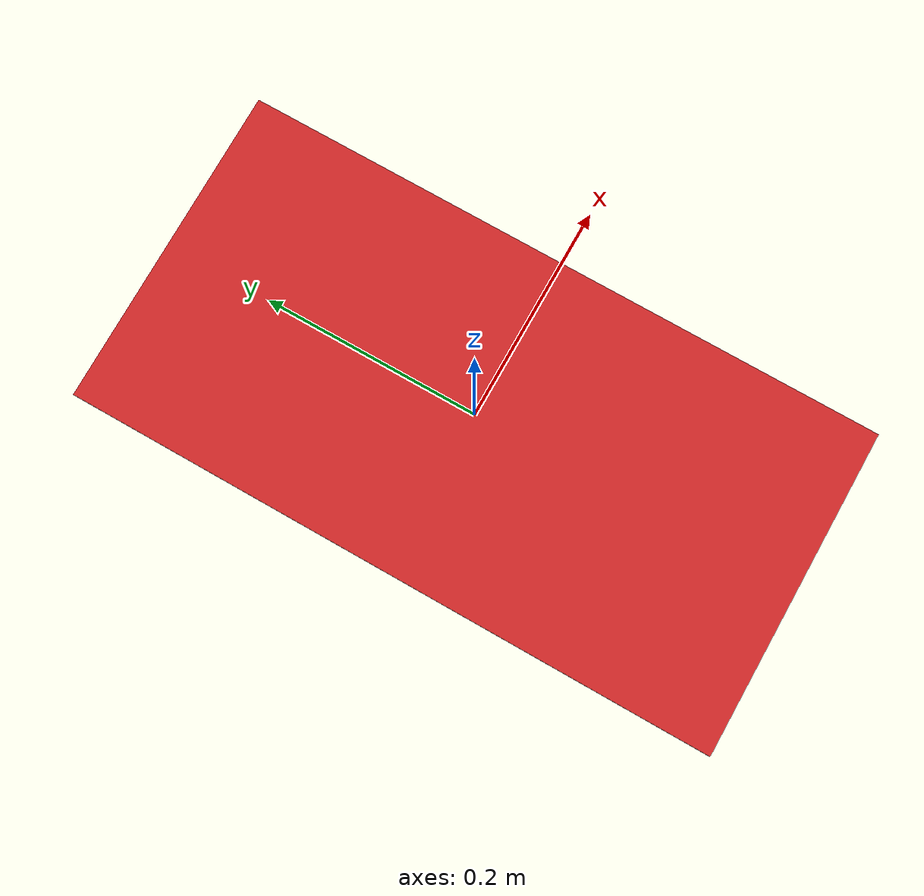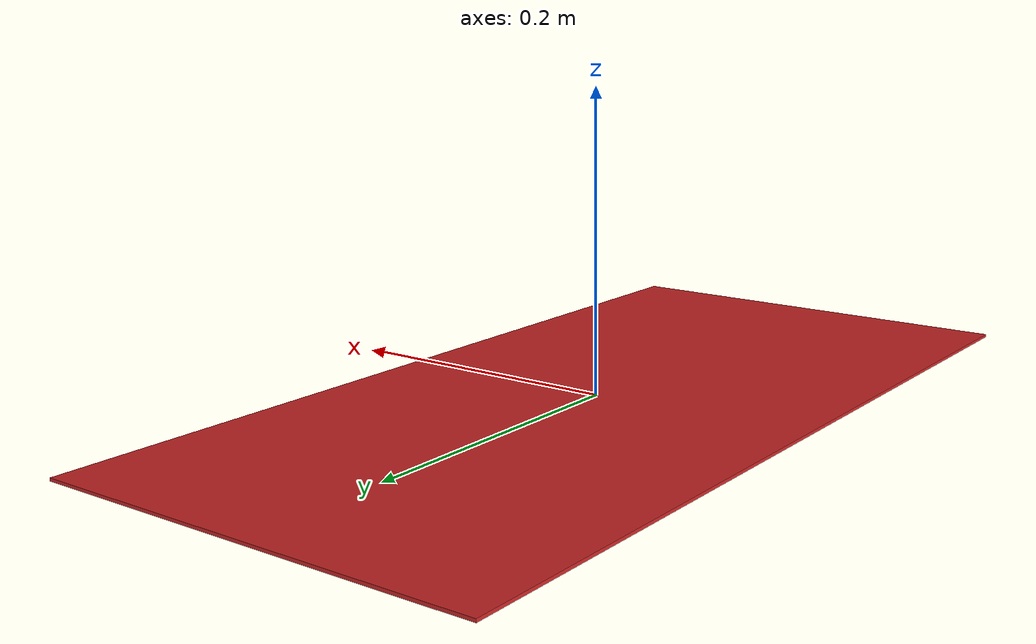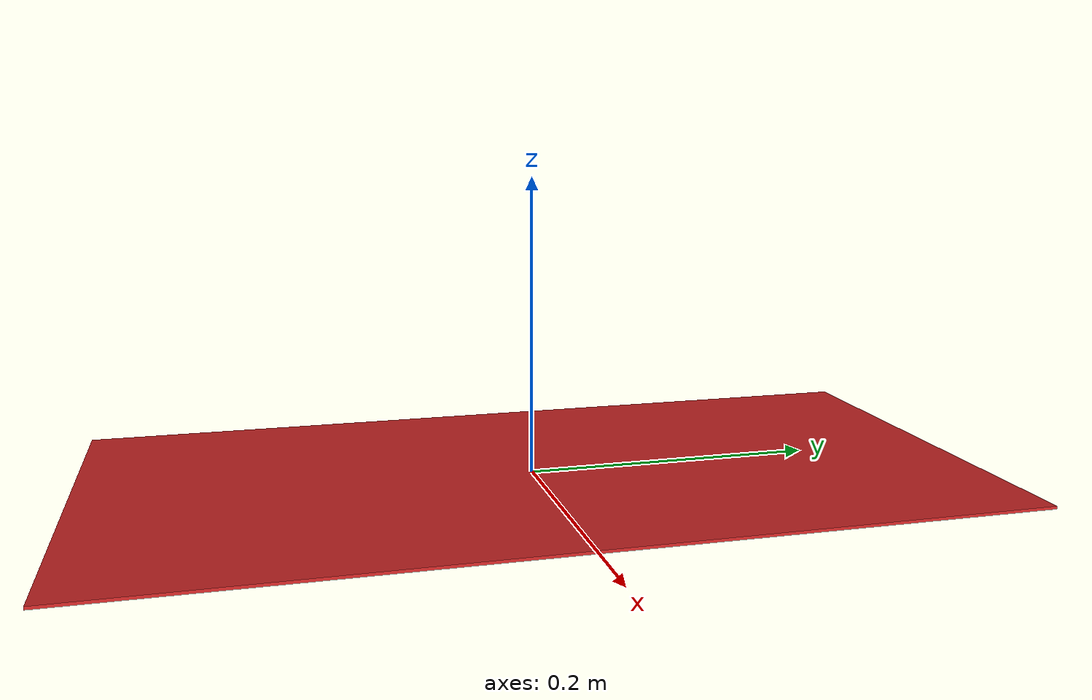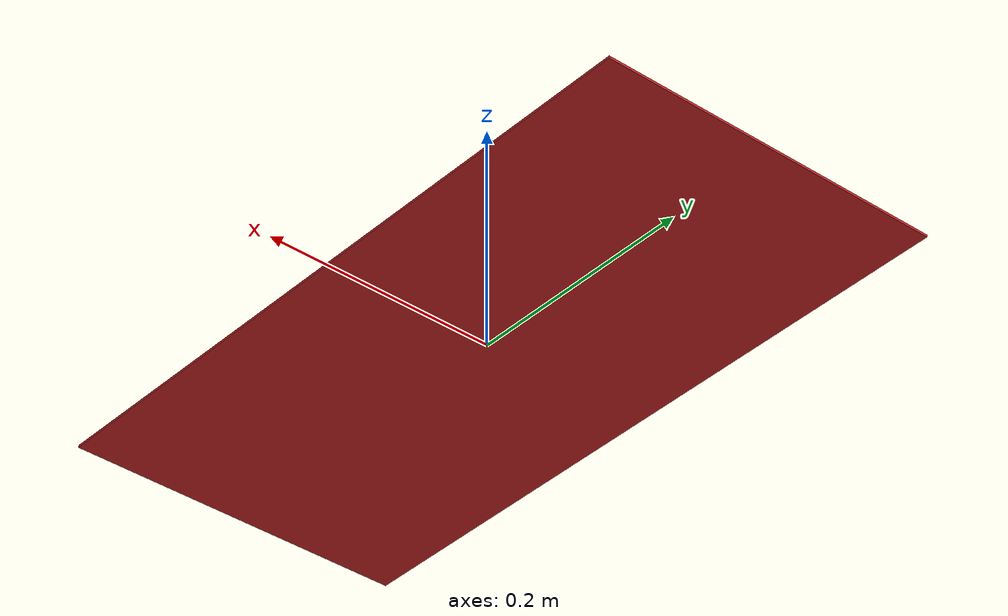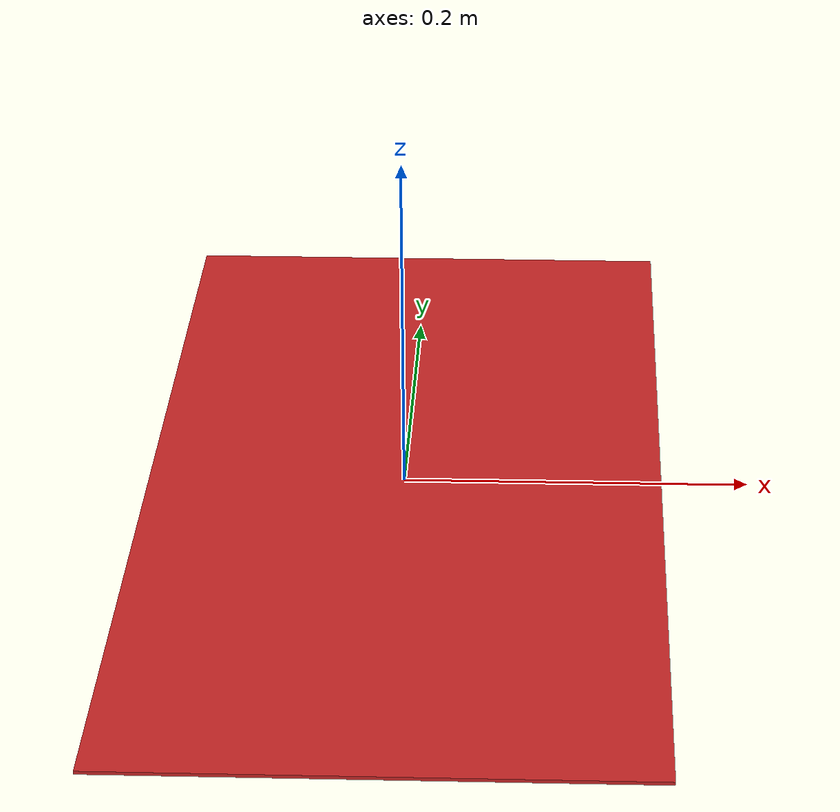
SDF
<?xml version="1.0" ?>
<sdf version="1.5">
    <model name='area_charging'>
      <static>1</static>
      <link name='link'>
        <collision name='collision'>
          <geometry>
            <box>
              <size>0.3 0.6 0.002</size>
            </box>
          </geometry>
          <max_contacts>10</max_contacts>
          <surface>
            <contact>
              <ode/>
            </contact>
            <bounce/>
            <friction>
              <ode/>
            </friction>
          </surface>
        </collision>
        <visual name='visual'>
          <cast_shadows>0</cast_shadows>
          <geometry>
            <box>
              <size>0.3 0.6 0.002</size>
            </box>
          </geometry>
          <material>
            <script>
              <uri>file://media/materials/scripts/gazebo.material</uri>
              <name>Gazebo/Red</name>

            </script>
          </material>
        </visual>
        <self_collide>0</self_collide>
        <kinematic>0</kinematic>
        <gravity>1</gravity>
      </link>
      <pose>0 0 0 0 -0 0</pose>
    </model>
</sdf>
